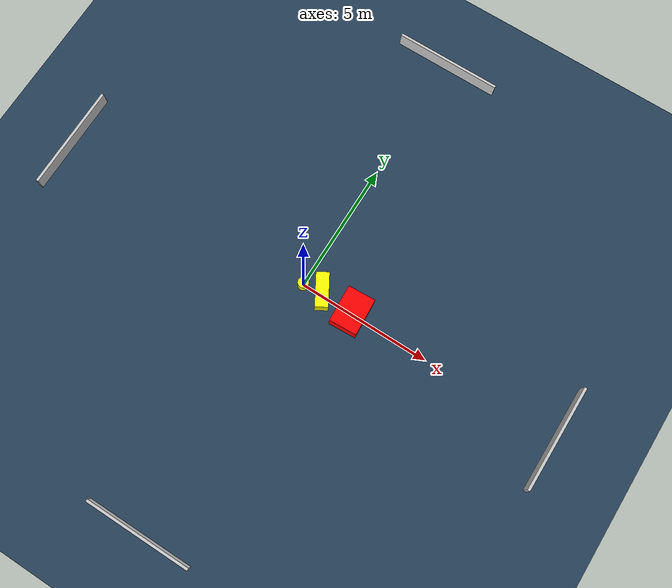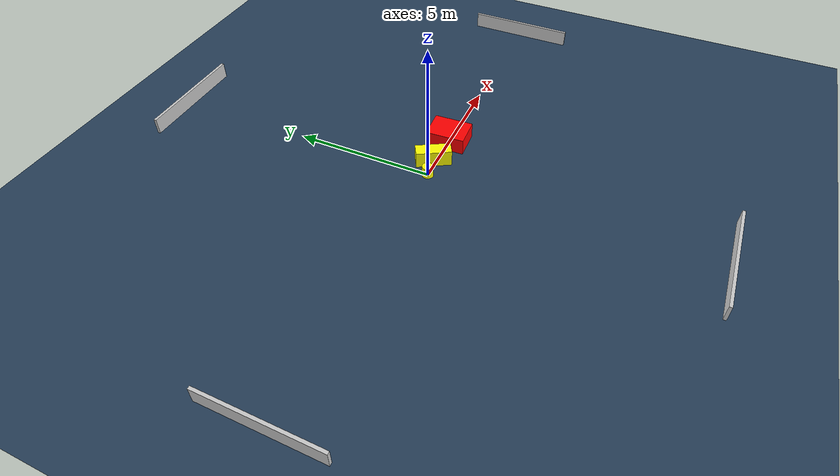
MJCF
<?xml version="1.0" ?>
<mujoco model="generated_environment">
  <option timestep="0.01" integrator="RK4" cone="elliptic"/>
  <default>
    <geom density="1"/>
  </default>
  <asset>
    <texture builtin="gradient" height="3072" name="skybox" rgb1="0.3 0.5 0.7" rgb2="0 0 0" type="skybox" width="512"/>
    <texture builtin="checker" height="300" name="groundplane" rgb1="0.2 0.3 0.4" rgb2="0.1 0.2 0.3" type="2d" width="300"/>
    <material name="groundplane" reflectance="0.2" texrepeat="5 5" texture="groundplane"/>
  </asset>
  <worldbody>
    <light dir="0 0 -1" directional="true" pos="0 0 1.5"/>
    <geom condim="3" friction="0.5 0.005 0.001" material="groundplane" name="floor" pos="0 0 0" size="0 0 0.05" type="plane"/>
    <body name="walls">
      <geom name="wall_1" condim="4" pos="-10.0 0.0 0.3" rgba="0.800000011920929 0.800000011920929 0.800000011920929 1.0" size="0.05 2.0 0.3" type="box"/>
      <geom name="wall_2" condim="4" pos="10.0 0.0 0.3" rgba="0.800000011920929 0.800000011920929 0.800000011920929 1.0" size="0.05 2.0 0.3" type="box"/>
      <geom name="wall_3" condim="4" pos="0.0 -10.0 0.3" rgba="0.800000011920929 0.800000011920929 0.800000011920929 1.0" size="2.0 0.05 0.3" type="box"/>
      <geom name="wall_4" condim="4" pos="0.0 10.0 0.3" rgba="0.800000011920929 0.800000011920929 0.800000011920929 1.0" size="2.0 0.05 0.3" type="box"/>
    </body>
    <body name="robot">
      <joint name="joint_x" type="slide" pos="0 0 0" axis="1 0 0"/>
      <joint name="joint_y" type="slide" pos="0 0 0" axis="0 1 0"/>
      <geom name="robot" type="cylinder" pos="0.0 0.0 0.2" size="0.2 0.2 0.0" mass="5.0" friction="1.0 0.005 0.0001" condim="4" rgba="1.0 1.0 0.0 1.0"/>
    </body>
    <body name="obstacle_1_movable">
      <geom name="obstacle_1_movable" condim="4" pos="0.7084087599716208 0.10494594180649636 0.3" euler="0 0 119.87628513655169" friction="0.0 0.005 0.001" rgba="1.0 1.0 0.0 1.0" size="0.6261361161972059 0.23769880529542547 0.3" type="box" mass="0.1"/>
      <joint type="free"/>
    </body>
    <body name="obstacle_2_static">
      <geom name="obstacle_2_static" condim="4" pos="1.9735031038128337 0.03792719795891456 0.3" euler="0 0 183.0895967875482" friction="0.0 0.005 0.001" rgba="1.0 0.0 0.0 1.0" size="0.5205086935079919 0.6989627826636854 0.3" type="box"/>
    </body>
  </worldbody>
  <actuator>
    <motor name="actuator_x" joint="joint_x" gear="1" ctrlrange="-1 1"/>
    <motor name="actuator_y" joint="joint_y" gear="1" ctrlrange="-1 1"/>
  </actuator>
</mujoco>
